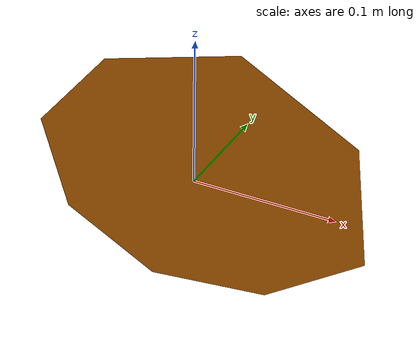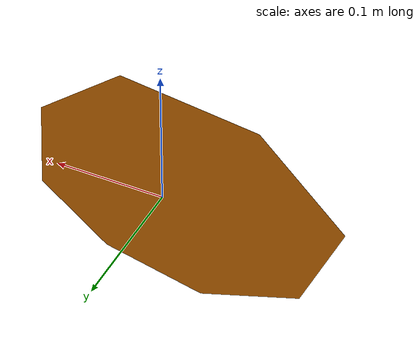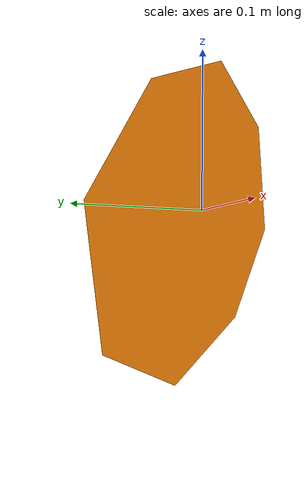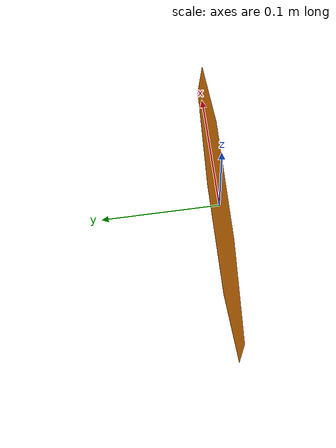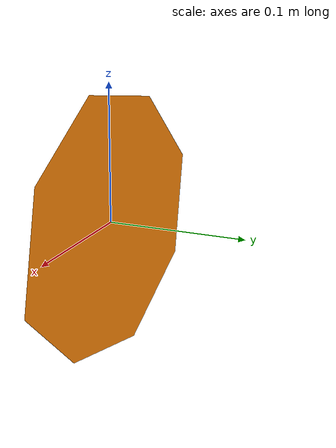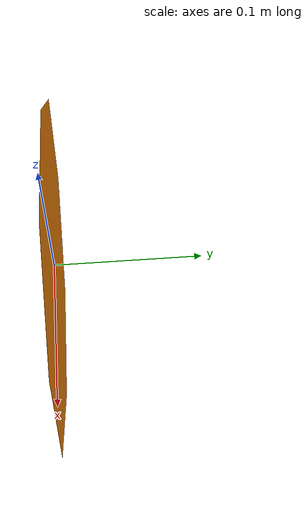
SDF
<?xml version="1.0"?>
<sdf version="1.6">
  <model name="disease_patch">
    <static>true</static>
    <link name="patch_link">
      <visual name="irregular_patch">
        <cast_shadows>false</cast_shadows>
        <geometry>
          <mesh><uri>model://disease_patch/meshes/disease_patch.obj</uri></mesh>
        </geometry>
        <material>
          <ambient>0.60 0.32 0.01 1</ambient>
          <diffuse>0.90 0.48 0.02 1</diffuse>
          <specular>0.02 0.02 0.02 1</specular>
        </material>
      </visual>
    </link>
  </model>
</sdf>
